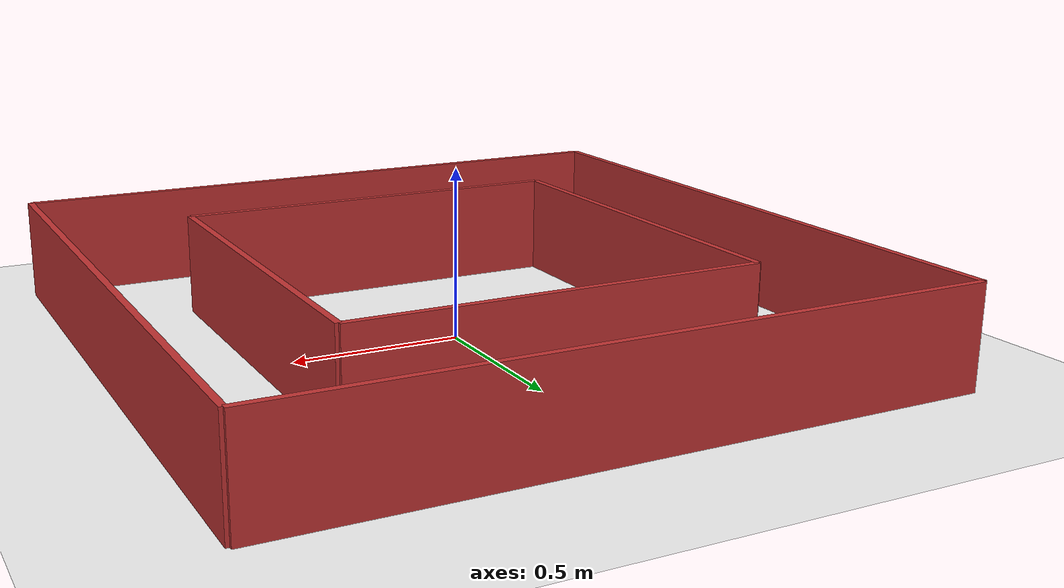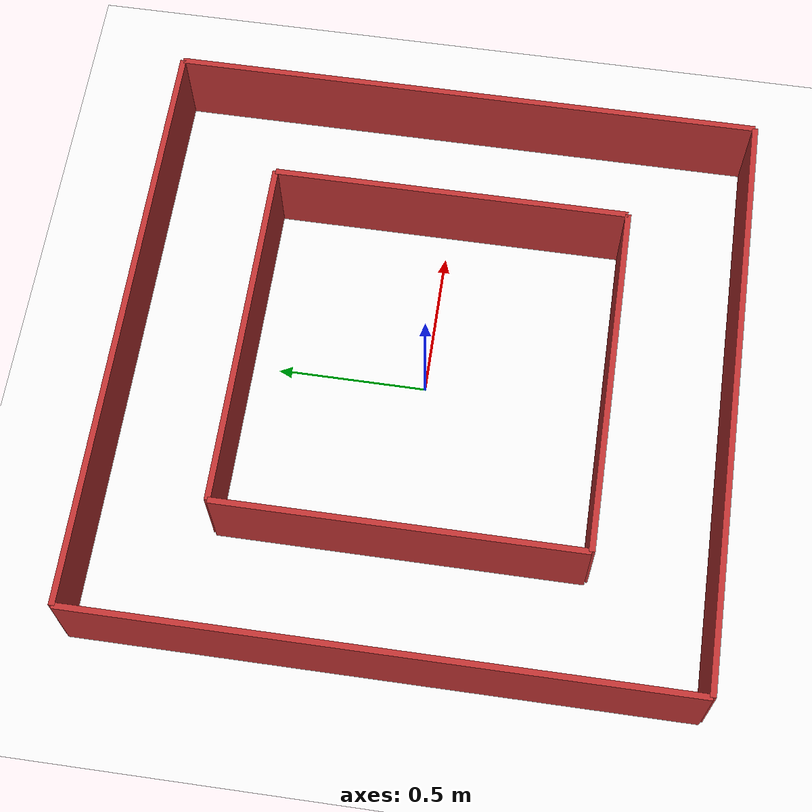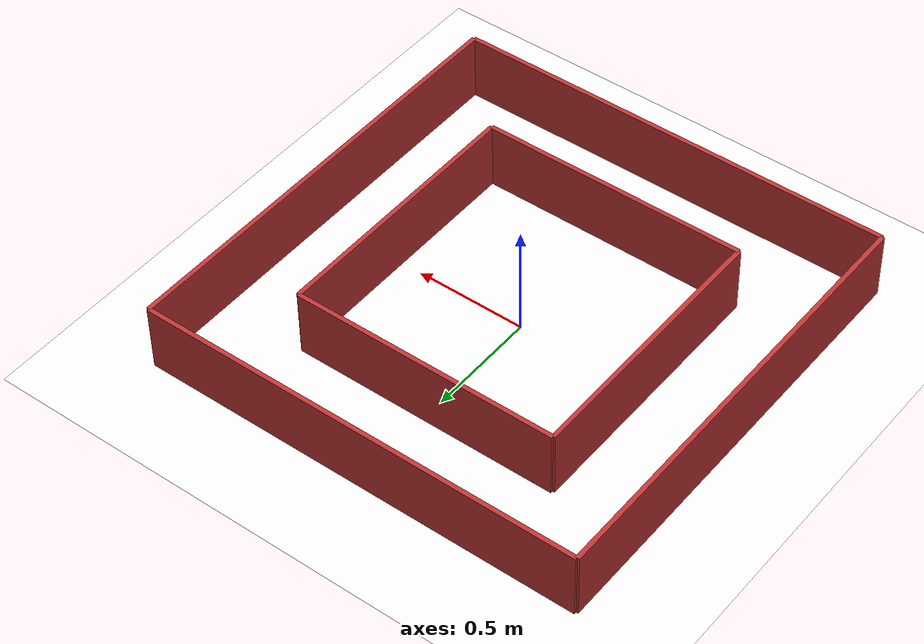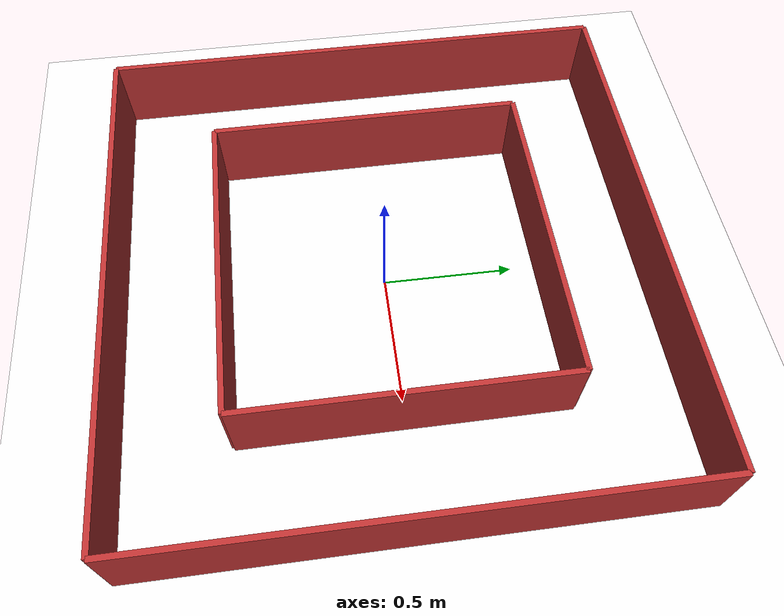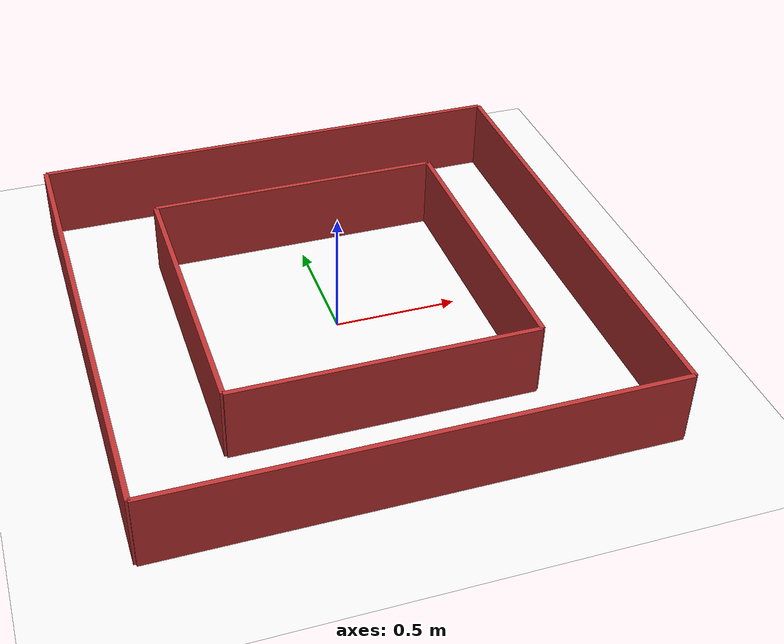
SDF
<?xml version="1.0"?>
<sdf version="1.10">
  <world name="corridor_loop">

    <physics name="default_physics" default="0" type="ode">
      <max_step_size>0.001</max_step_size>
      <real_time_factor>1.0</real_time_factor>
    </physics>

    <plugin filename="gz-sim-physics-system"           name="gz::sim::systems::Physics"/>
    <plugin filename="gz-sim-user-commands-system"     name="gz::sim::systems::UserCommands"/>
    <plugin filename="gz-sim-scene-broadcaster-system" name="gz::sim::systems::SceneBroadcaster"/>
    <plugin filename="gz-sim-sensors-system"           name="gz::sim::systems::Sensors">
      <render_engine>ogre2</render_engine>
    </plugin>
    <plugin filename="gz-sim-imu-system"               name="gz::sim::systems::Imu"/>

    <scene>
      <ambient>0.6 0.6 0.6 1</ambient>
      <background>0.9 0.9 0.95 1</background>
    </scene>

    <light type="directional" name="sun">
      <cast_shadows>true</cast_shadows>
      <pose>0 0 10 0 0 0</pose>
      <diffuse>0.9 0.9 0.9 1</diffuse>
      <specular>0.2 0.2 0.2 1</specular>
      <direction>-0.3 0.3 -1</direction>
    </light>

    <model name="ground_plane">
      <static>true</static>
      <link name="link">
        <collision name="collision">
          <geometry><plane><normal>0 0 1</normal><size>10 10</size></plane></geometry>
        </collision>
        <visual name="visual">
          <geometry><plane><normal>0 0 1</normal><size>10 10</size></plane></geometry>
          <material>
            <ambient>0.95 0.95 0.95 1</ambient>
            <diffuse>0.95 0.95 0.95 1</diffuse>
          </material>
        </visual>
      </link>
    </model>

    <!-- ===== outer walls (5×5 cells = 2.0 m square) ===== -->
    <model name="outer_south">
      <static>true</static>
      <pose>0 -1.0 0.15 0 0 0</pose>
      <link name="link">
        <collision name="c"><geometry><box><size>2.0 0.02 0.3</size></box></geometry></collision>
        <visual name="v"><geometry><box><size>2.0 0.02 0.3</size></box></geometry>
          <material><ambient>0.75 0.2 0.2 1</ambient><diffuse>0.75 0.2 0.2 1</diffuse></material></visual>
      </link>
    </model>
    <model name="outer_north">
      <static>true</static>
      <pose>0 1.0 0.15 0 0 0</pose>
      <link name="link">
        <collision name="c"><geometry><box><size>2.0 0.02 0.3</size></box></geometry></collision>
        <visual name="v"><geometry><box><size>2.0 0.02 0.3</size></box></geometry>
          <material><ambient>0.75 0.2 0.2 1</ambient><diffuse>0.75 0.2 0.2 1</diffuse></material></visual>
      </link>
    </model>
    <model name="outer_west">
      <static>true</static>
      <pose>-1.0 0 0.15 0 0 0</pose>
      <link name="link">
        <collision name="c"><geometry><box><size>0.02 2.0 0.3</size></box></geometry></collision>
        <visual name="v"><geometry><box><size>0.02 2.0 0.3</size></box></geometry>
          <material><ambient>0.75 0.2 0.2 1</ambient><diffuse>0.75 0.2 0.2 1</diffuse></material></visual>
      </link>
    </model>
    <model name="outer_east">
      <static>true</static>
      <pose>1.0 0 0.15 0 0 0</pose>
      <link name="link">
        <collision name="c"><geometry><box><size>0.02 2.0 0.3</size></box></geometry></collision>
        <visual name="v"><geometry><box><size>0.02 2.0 0.3</size></box></geometry>
          <material><ambient>0.75 0.2 0.2 1</ambient><diffuse>0.75 0.2 0.2 1</diffuse></material></visual>
      </link>
    </model>

    <!-- ===== inner walls (3×3 cells = 1.2 m square) ===== -->
    <model name="inner_south">
      <static>true</static>
      <pose>0 -0.6 0.15 0 0 0</pose>
      <link name="link">
        <collision name="c"><geometry><box><size>1.2 0.02 0.3</size></box></geometry></collision>
        <visual name="v"><geometry><box><size>1.2 0.02 0.3</size></box></geometry>
          <material><ambient>0.75 0.2 0.2 1</ambient><diffuse>0.75 0.2 0.2 1</diffuse></material></visual>
      </link>
    </model>
    <model name="inner_north">
      <static>true</static>
      <pose>0 0.6 0.15 0 0 0</pose>
      <link name="link">
        <collision name="c"><geometry><box><size>1.2 0.02 0.3</size></box></geometry></collision>
        <visual name="v"><geometry><box><size>1.2 0.02 0.3</size></box></geometry>
          <material><ambient>0.75 0.2 0.2 1</ambient><diffuse>0.75 0.2 0.2 1</diffuse></material></visual>
      </link>
    </model>
    <model name="inner_west">
      <static>true</static>
      <pose>-0.6 0 0.15 0 0 0</pose>
      <link name="link">
        <collision name="c"><geometry><box><size>0.02 1.2 0.3</size></box></geometry></collision>
        <visual name="v"><geometry><box><size>0.02 1.2 0.3</size></box></geometry>
          <material><ambient>0.75 0.2 0.2 1</ambient><diffuse>0.75 0.2 0.2 1</diffuse></material></visual>
      </link>
    </model>
    <model name="inner_east">
      <static>true</static>
      <pose>0.6 0 0.15 0 0 0</pose>
      <link name="link">
        <collision name="c"><geometry><box><size>0.02 1.2 0.3</size></box></geometry></collision>
        <visual name="v"><geometry><box><size>0.02 1.2 0.3</size></box></geometry>
          <material><ambient>0.75 0.2 0.2 1</ambient><diffuse>0.75 0.2 0.2 1</diffuse></material></visual>
      </link>
    </model>

  </world>
</sdf>
